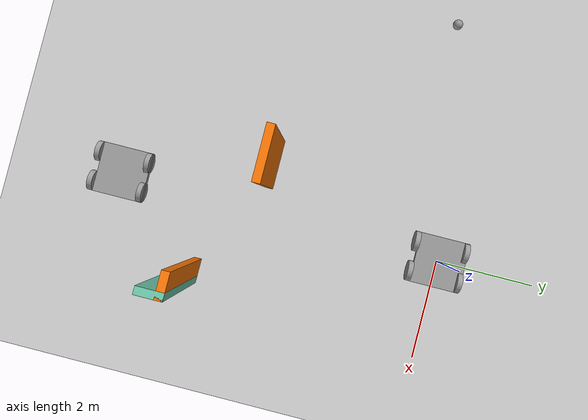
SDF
<sdf version="1.6">
 <world name="default">
  <model name="ground_plane">
   <static>1</static>
   <link name="link">
    <collision name="collision">
     <geometry><plane><normal>0 0 1</normal><size>100 100</size></plane></geometry>
     <surface><friction><ode><mu>100</mu><mu2>50</mu2></ode></friction></surface>
    </collision>
    <visual name="visual">
     <cast_shadows>0</cast_shadows>
     <geometry><plane><normal>0 0 1</normal><size>100 100</size></plane></geometry>
     <material>
      <script><uri>file://media/materials/scripts/gazebo.material</uri><name>Gazebo/Grey</name></script>
     </material>
    </visual>
   </link>
  </model>
  <model name="4WheelRobot">
   <link name="link_0">
    <pose>0 0.040015 0 0 -0 0</pose>
    <inertial>
     <mass>1</mass>
     <inertia>
      <ixx>0.166667</ixx>
      <ixy>0</ixy>
      <ixz>0</ixz>
      <iyy>0.166667</iyy>
      <iyz>0</iyz>
      <izz>0.166667</izz>
     </inertia>
    </inertial>
    <visual name="visual">
     <geometry><box><size>1 1 0.1</size></box></geometry>
     <material>
      <lighting>1</lighting>
      <script><uri>file://media/materials/scripts/gazebo.material</uri><name>Gazebo/Grey</name></script>
      <shader type="pixel"><normal_map>__default__</normal_map></shader>
      <ambient>0.3 0.3 0.3 1</ambient>
      <diffuse>0.7 0.7 0.7 1</diffuse>
      <specular>0.01 0.01 0.01 1</specular>
      <emissive>0 0 0 1</emissive>
     </material>
    </visual>
    <collision name="collision">
     <geometry><box><size>1 1 0.1</size></box></geometry>
     <surface>
      <friction>
       <ode><mu>1</mu><mu2>1</mu2><fdir1>0 0 0</fdir1><slip1>0</slip1><slip2>0</slip2></ode>
       <torsional>
        <coefficient>1</coefficient>
        <patch_radius>0</patch_radius>
        <surface_radius>0</surface_radius>
        <use_patch_radius>1</use_patch_radius>
        <ode><slip>0</slip></ode>
       </torsional>
      </friction>
      <bounce><restitution_coefficient>0</restitution_coefficient><threshold>1e+06</threshold></bounce>
      <contact>
       <collide_without_contact>0</collide_without_contact>
       <collide_without_contact_bitmask>1</collide_without_contact_bitmask>
       <collide_bitmask>1</collide_bitmask>
       <ode>
        <soft_cfm>0</soft_cfm>
        <soft_erp>0.2</soft_erp>
        <kp>1e+13</kp>
        <kd>1</kd>
        <max_vel>0.01</max_vel>
        <min_depth>0</min_depth>
       </ode>
       <bullet>
        <split_impulse>1</split_impulse>
        <split_impulse_penetration_threshold>-0.01</split_impulse_penetration_threshold>
        <soft_cfm>0</soft_cfm>
        <soft_erp>0.2</soft_erp>
        <kp>1e+13</kp>
        <kd>1</kd>
       </bullet>
      </contact>
     </surface>
    </collision>
   </link>
   <link name="link_1">
    <pose>-0.3 -0.510004 0 1.5707 -0 0</pose>
    <inertial>
     <mass>1</mass>
     <inertia><ixx>0.145833</ixx><ixy>0</ixy><ixz>0</ixz><iyy>0.145833</iyy><iyz>0</iyz><izz>0.125</izz></inertia>
    </inertial>
    <visual name="visual">
     <geometry><cylinder><radius>0.2</radius><length>0.1</length></cylinder></geometry>
     <material>
      <lighting>1</lighting>
      <script><uri>file://media/materials/scripts/gazebo.material</uri><name>Gazebo/Grey</name></script>
      <shader type="pixel"><normal_map>__default__</normal_map></shader>
      <ambient>0.3 0.3 0.3 1</ambient>
      <diffuse>0.7 0.7 0.7 1</diffuse>
      <specular>0.01 0.01 0.01 1</specular>
      <emissive>0 0 0 1</emissive>
     </material>
    </visual>
    <collision name="collision">
     <geometry><cylinder><radius>0.2</radius><length>0.1</length></cylinder></geometry>
     <surface>
      <friction>
       <ode><mu>1</mu><mu2>1</mu2><fdir1>0 0 0</fdir1><slip1>0</slip1><slip2>0</slip2></ode>
       <torsional>
        <coefficient>1</coefficient>
        <patch_radius>0</patch_radius>
        <surface_radius>0</surface_radius>
        <use_patch_radius>1</use_patch_radius>
        <ode><slip>0</slip></ode>
       </torsional>
      </friction>
      <bounce><restitution_coefficient>0</restitution_coefficient><threshold>1e+06</threshold></bounce>
      <contact>
       <collide_without_contact>0</collide_without_contact>
       <collide_without_contact_bitmask>1</collide_without_contact_bitmask>
       <collide_bitmask>1</collide_bitmask>
       <ode>
        <soft_cfm>0</soft_cfm>
        <soft_erp>0.2</soft_erp>
        <kp>1e+13</kp>
        <kd>1</kd>
        <max_vel>0.01</max_vel>
        <min_depth>0</min_depth>
       </ode>
       <bullet>
        <split_impulse>1</split_impulse>
        <split_impulse_penetration_threshold>-0.01</split_impulse_penetration_threshold>
        <soft_cfm>0</soft_cfm>
        <soft_erp>0.2</soft_erp>
        <kp>1e+13</kp>
        <kd>1</kd>
       </bullet>
      </contact>
     </surface>
    </collision>
   </link>
   <link name="link_1_clone">
    <pose>-0.3 0.489996 0 1.5707 -0 0</pose>
    <inertial>
     <mass>1</mass>
     <inertia><ixx>0.145833</ixx><ixy>0</ixy><ixz>0</ixz><iyy>0.145833</iyy><iyz>0</iyz><izz>0.125</izz></inertia>
    </inertial>
    <visual name="visual">
     <geometry><cylinder><radius>0.2</radius><length>0.1</length></cylinder></geometry>
     <material>
      <lighting>1</lighting>
      <script><uri>file://media/materials/scripts/gazebo.material</uri><name>Gazebo/Grey</name></script>
      <shader type="pixel"><normal_map>__default__</normal_map></shader>
      <ambient>0.3 0.3 0.3 1</ambient>
      <diffuse>0.7 0.7 0.7 1</diffuse>
      <specular>0.01 0.01 0.01 1</specular>
      <emissive>0 0 0 1</emissive>
     </material>
    </visual>
    <collision name="collision">
     <geometry><cylinder><radius>0.2</radius><length>0.1</length></cylinder></geometry>
     <surface>
      <friction>
       <ode><mu>1</mu><mu2>1</mu2><fdir1>0 0 0</fdir1><slip1>0</slip1><slip2>0</slip2></ode>
       <torsional>
        <coefficient>1</coefficient>
        <patch_radius>0</patch_radius>
        <surface_radius>0</surface_radius>
        <use_patch_radius>1</use_patch_radius>
        <ode><slip>0</slip></ode>
       </torsional>
      </friction>
      <bounce><restitution_coefficient>0</restitution_coefficient><threshold>1e+06</threshold></bounce>
      <contact>
       <collide_without_contact>0</collide_without_contact>
       <collide_without_contact_bitmask>1</collide_without_contact_bitmask>
       <collide_bitmask>1</collide_bitmask>
       <ode>
        <soft_cfm>0</soft_cfm>
        <soft_erp>0.2</soft_erp>
        <kp>1e+13</kp>
        <kd>1</kd>
        <max_vel>0.01</max_vel>
        <min_depth>0</min_depth>
       </ode>
       <bullet>
        <split_impulse>1</split_impulse>
        <split_impulse_penetration_threshold>-0.01</split_impulse_penetration_threshold>
        <soft_cfm>0</soft_cfm>
        <soft_erp>0.2</soft_erp>
        <kp>1e+13</kp>
        <kd>1</kd>
       </bullet>
      </contact>
     </surface>
    </collision>
   </link>
   <link name="link_1_clone_0">
    <pose>0.3 -0.510004 0 1.5707 -0 0</pose>
    <inertial>
     <mass>1</mass>
     <inertia><ixx>0.145833</ixx><ixy>0</ixy><ixz>0</ixz><iyy>0.145833</iyy><iyz>0</iyz><izz>0.125</izz></inertia>
    </inertial>
    <visual name="visual">
     <geometry><cylinder><radius>0.2</radius><length>0.1</length></cylinder></geometry>
     <material>
      <lighting>1</lighting>
      <script><uri>file://media/materials/scripts/gazebo.material</uri><name>Gazebo/Grey</name></script>
      <shader type="pixel"><normal_map>__default__</normal_map></shader>
      <ambient>0.3 0.3 0.3 1</ambient>
      <diffuse>0.7 0.7 0.7 1</diffuse>
      <specular>0.01 0.01 0.01 1</specular>
      <emissive>0 0 0 1</emissive>
     </material>
    </visual>
    <collision name="collision">
     <geometry><cylinder><radius>0.2</radius><length>0.1</length></cylinder></geometry>
     <surface>
      <friction>
       <ode><mu>1</mu><mu2>1</mu2><fdir1>0 0 0</fdir1><slip1>0</slip1><slip2>0</slip2></ode>
       <torsional>
        <coefficient>1</coefficient>
        <patch_radius>0</patch_radius>
        <surface_radius>0</surface_radius>
        <use_patch_radius>1</use_patch_radius>
        <ode><slip>0</slip></ode>
       </torsional>
      </friction>
      <bounce><restitution_coefficient>0</restitution_coefficient><threshold>1e+06</threshold></bounce>
      <contact>
       <collide_without_contact>0</collide_without_contact>
       <collide_without_contact_bitmask>1</collide_without_contact_bitmask>
       <collide_bitmask>1</collide_bitmask>
       <ode>
        <soft_cfm>0</soft_cfm>
        <soft_erp>0.2</soft_erp>
        <kp>1e+13</kp>
        <kd>1</kd>
        <max_vel>0.01</max_vel>
        <min_depth>0</min_depth>
       </ode>
       <bullet>
        <split_impulse>1</split_impulse>
        <split_impulse_penetration_threshold>-0.01</split_impulse_penetration_threshold>
        <soft_cfm>0</soft_cfm>
        <soft_erp>0.2</soft_erp>
        <kp>1e+13</kp>
        <kd>1</kd>
       </bullet>
      </contact>
     </surface>
    </collision>
   </link>
   <link name="link_1_clone_1">
    <pose>0.3 0.489996 0 1.5707 -0 0</pose>
    <inertial>
     <mass>1</mass>
     <inertia><ixx>0.145833</ixx><ixy>0</ixy><ixz>0</ixz><iyy>0.145833</iyy><iyz>0</iyz><izz>0.125</izz></inertia>
    </inertial>
    <visual name="visual">
     <geometry><cylinder><radius>0.2</radius><length>0.1</length></cylinder></geometry>
     <material>
      <lighting>1</lighting>
      <script><uri>file://media/materials/scripts/gazebo.material</uri><name>Gazebo/Grey</name></script>
      <shader type="pixel"><normal_map>__default__</normal_map></shader>
      <ambient>0.3 0.3 0.3 1</ambient>
      <diffuse>0.7 0.7 0.7 1</diffuse>
      <specular>0.01 0.01 0.01 1</specular>
      <emissive>0 0 0 1</emissive>
     </material>
    </visual>
    <collision name="collision">
     <geometry><cylinder><radius>0.2</radius><length>0.1</length></cylinder></geometry>
     <surface>
      <friction>
       <ode><mu>1</mu><mu2>1</mu2><fdir1>0 0 0</fdir1><slip1>0</slip1><slip2>0</slip2></ode>
       <torsional>
        <coefficient>1</coefficient>
        <patch_radius>0</patch_radius>
        <surface_radius>0</surface_radius>
        <use_patch_radius>1</use_patch_radius>
        <ode><slip>0</slip></ode>
       </torsional>
      </friction>
      <bounce><restitution_coefficient>0</restitution_coefficient><threshold>1e+06</threshold></bounce>
      <contact>
       <collide_without_contact>0</collide_without_contact>
       <collide_without_contact_bitmask>1</collide_without_contact_bitmask>
       <collide_bitmask>1</collide_bitmask>
       <ode>
        <soft_cfm>0</soft_cfm>
        <soft_erp>0.2</soft_erp>
        <kp>1e+13</kp>
        <kd>1</kd>
        <max_vel>0.01</max_vel>
        <min_depth>0</min_depth>
       </ode>
       <bullet>
        <split_impulse>1</split_impulse>
        <split_impulse_penetration_threshold>-0.01</split_impulse_penetration_threshold>
        <soft_cfm>0</soft_cfm>
        <soft_erp>0.2</soft_erp>
        <kp>1e+13</kp>
        <kd>1</kd>
       </bullet>
      </contact>
     </surface>
    </collision>
   </link>
   <joint name="link_0_JOINT_0" type="revolute">
    <parent>link_0</parent>
    <child>link_1</child>
    <axis>
     <xyz>1 0 0</xyz>
     <use_parent_model_frame>0</use_parent_model_frame>
     <limit>
      <lower>-1.79769e+308</lower>
      <upper>1.79769e+308</upper>
      <effort>-1</effort>
      <velocity>-1</velocity>
     </limit>
     <dynamics>
      <spring_reference>0</spring_reference>
      <spring_stiffness>0</spring_stiffness>
      <damping>0</damping>
     </dynamics>
    </axis>
    <physics>
     <ode><limit><cfm>0</cfm><erp>0.2</erp></limit><suspension><cfm>0</cfm><erp>0.2</erp></suspension></ode>
    </physics>
   </joint>
   <joint name="link_0_JOINT_1" type="revolute">
    <parent>link_0</parent>
    <child>link_1_clone</child>
    <axis>
     <xyz>1 0 0</xyz>
     <use_parent_model_frame>0</use_parent_model_frame>
     <limit>
      <lower>-1.79769e+308</lower>
      <upper>1.79769e+308</upper>
      <effort>-1</effort>
      <velocity>-1</velocity>
     </limit>
     <dynamics>
      <spring_reference>0</spring_reference>
      <spring_stiffness>0</spring_stiffness>
      <damping>0</damping>
     </dynamics>
    </axis>
    <physics>
     <ode><limit><cfm>0</cfm><erp>0.2</erp></limit><suspension><cfm>0</cfm><erp>0.2</erp></suspension></ode>
    </physics>
   </joint>
   <joint name="link_0_JOINT_2" type="revolute">
    <parent>link_0</parent>
    <child>link_1_clone_0</child>
    <axis>
     <xyz>1 0 0</xyz>
     <use_parent_model_frame>0</use_parent_model_frame>
     <limit>
      <lower>-1.79769e+308</lower>
      <upper>1.79769e+308</upper>
      <effort>-1</effort>
      <velocity>-1</velocity>
     </limit>
     <dynamics>
      <spring_reference>0</spring_reference>
      <spring_stiffness>0</spring_stiffness>
      <damping>0</damping>
     </dynamics>
    </axis>
    <physics>
     <ode><limit><cfm>0</cfm><erp>0.2</erp></limit><suspension><cfm>0</cfm><erp>0.2</erp></suspension></ode>
    </physics>
   </joint>
   <joint name="link_0_JOINT_3" type="revolute">
    <parent>link_0</parent>
    <child>link_1_clone_1</child>
    <axis>
     <xyz>1 0 0</xyz>
     <use_parent_model_frame>0</use_parent_model_frame>
     <limit>
      <lower>-1.79769e+308</lower>
      <upper>1.79769e+308</upper>
      <effort>-1</effort>
      <velocity>-1</velocity>
     </limit>
     <dynamics>
      <spring_reference>0</spring_reference>
      <spring_stiffness>0</spring_stiffness>
      <damping>0</damping>
     </dynamics>
    </axis>
    <physics>
     <ode><limit><cfm>0</cfm><erp>0.2</erp></limit><suspension><cfm>0</cfm><erp>0.2</erp></suspension></ode>
    </physics>
   </joint>
   <static>0</static>
   <pose>0.00325 -0.018152 0.199995 1e-05 -0 0.002145</pose>
  </model>
  <model name="orange_wall">
   <link name="Wall_0">
    <pose>0 0 0 0 -0 3.14159</pose>
    <visual name="Wall_0_Visual">
     <pose>0 0 1.25 0 -0 0</pose>
     <geometry><box><size>1 0.15 2.5</size></box></geometry>
     <material>
      <script><uri>file://media/materials/scripts/gazebo.material</uri><name>Gazebo/Grey</name></script>
      <ambient>0.996078 0.47451 0.0196078 1</ambient>
      <shader type="pixel"/>
      <diffuse>0.7 0.7 0.7 1</diffuse>
      <specular>0.01 0.01 0.01 1</specular>
      <emissive>0 0 0 1</emissive>
     </material>
     <meta><layer>0</layer></meta>
    </visual>
    <collision name="Wall_0_Collision">
     <pose>0 0 1.25 0 -0 0</pose>
     <geometry><box><size>1 0.15 2.5</size></box></geometry>
     <surface>
      <friction>
       <ode><mu>1</mu><mu2>1</mu2><fdir1>0 0 0</fdir1><slip1>0</slip1><slip2>0</slip2></ode>
       <torsional>
        <coefficient>1</coefficient>
        <patch_radius>0</patch_radius>
        <surface_radius>0</surface_radius>
        <use_patch_radius>1</use_patch_radius>
        <ode><slip>0</slip></ode>
       </torsional>
      </friction>
      <bounce><restitution_coefficient>0</restitution_coefficient><threshold>1e+06</threshold></bounce>
      <contact>
       <collide_without_contact>0</collide_without_contact>
       <collide_without_contact_bitmask>1</collide_without_contact_bitmask>
       <collide_bitmask>1</collide_bitmask>
       <ode>
        <soft_cfm>0</soft_cfm>
        <soft_erp>0.2</soft_erp>
        <kp>1e+13</kp>
        <kd>1</kd>
        <max_vel>0.01</max_vel>
        <min_depth>0</min_depth>
       </ode>
       <bullet>
        <split_impulse>1</split_impulse>
        <split_impulse_penetration_threshold>-0.01</split_impulse_penetration_threshold>
        <soft_cfm>0</soft_cfm>
        <soft_erp>0.2</soft_erp>
        <kp>1e+13</kp>
        <kd>1</kd>
       </bullet>
      </contact>
     </surface>
    </collision>
   </link>
   <static>1</static>
   <pose>-1.085 -3.65 0 0 -0 0</pose>
  </model>
  <model name="teal-wall">
   <pose>1.395 -4.865 0 0 -0 0</pose>
   <link name="Wall_0">
    <collision name="Wall_0_Collision">
     <geometry><box><size>0.5 0.15 2.5</size></box></geometry>
     <pose>0 0 1.25 0 -0 0</pose>
    </collision>
    <visual name="Wall_0_Visual">
     <pose>0 0 1.25 0 -0 0</pose>
     <geometry><box><size>0.5 0.15 2.5</size></box></geometry>
     <material>
      <script><uri>file://media/materials/scripts/gazebo.material</uri><name>Gazebo/Grey</name></script>
      <ambient>0.996078 0.47451 0.0196078 1</ambient>
     </material>
     <meta><layer>0</layer></meta>
    </visual>
    <pose>0 0.175 0 0 -0 3.14159</pose>
   </link>
   <link name="Wall_2">
    <collision name="Wall_2_Collision">
     <geometry><box><size>0.5 0.15 2.5</size></box></geometry>
     <pose>0 0 1.25 0 -0 0</pose>
    </collision>
    <visual name="Wall_2_Visual">
     <pose>0 0 1.25 0 -0 0</pose>
     <geometry><box><size>0.5 0.15 2.5</size></box></geometry>
     <material>
      <script><uri>file://media/materials/scripts/gazebo.material</uri><name>Gazebo/Grey</name></script>
      <ambient>0.435294 0.796078 0.67451 1</ambient>
     </material>
     <meta><layer>0</layer></meta>
    </visual>
    <pose>0.175 0 0 0 0 -1.5708</pose>
   </link>
   <static>1</static>
  </model>
  <model name="4WheelRobot_clone">
   <link name="link_0">
    <pose>0 0.040015 0 0 -0 0</pose>
    <inertial>
     <mass>1</mass>
     <inertia>
      <ixx>0.166667</ixx>
      <ixy>0</ixy>
      <ixz>0</ixz>
      <iyy>0.166667</iyy>
      <iyz>0</iyz>
      <izz>0.166667</izz>
     </inertia>
    </inertial>
    <visual name="visual">
     <geometry><box><size>1 1 0.1</size></box></geometry>
     <material>
      <lighting>1</lighting>
      <script><uri>file://media/materials/scripts/gazebo.material</uri><name>Gazebo/Grey</name></script>
      <shader type="pixel"><normal_map>__default__</normal_map></shader>
      <ambient>0.3 0.3 0.3 1</ambient>
      <diffuse>0.7 0.7 0.7 1</diffuse>
      <specular>0.01 0.01 0.01 1</specular>
      <emissive>0 0 0 1</emissive>
     </material>
    </visual>
    <collision name="collision">
     <geometry><box><size>1 1 0.1</size></box></geometry>
     <surface>
      <friction>
       <ode><mu>1</mu><mu2>1</mu2><fdir1>0 0 0</fdir1><slip1>0</slip1><slip2>0</slip2></ode>
       <torsional>
        <coefficient>1</coefficient>
        <patch_radius>0</patch_radius>
        <surface_radius>0</surface_radius>
        <use_patch_radius>1</use_patch_radius>
        <ode><slip>0</slip></ode>
       </torsional>
      </friction>
      <bounce><restitution_coefficient>0</restitution_coefficient><threshold>1e+06</threshold></bounce>
      <contact>
       <collide_without_contact>0</collide_without_contact>
       <collide_without_contact_bitmask>1</collide_without_contact_bitmask>
       <collide_bitmask>1</collide_bitmask>
       <ode>
        <soft_cfm>0</soft_cfm>
        <soft_erp>0.2</soft_erp>
        <kp>1e+13</kp>
        <kd>1</kd>
        <max_vel>0.01</max_vel>
        <min_depth>0</min_depth>
       </ode>
       <bullet>
        <split_impulse>1</split_impulse>
        <split_impulse_penetration_threshold>-0.01</split_impulse_penetration_threshold>
        <soft_cfm>0</soft_cfm>
        <soft_erp>0.2</soft_erp>
        <kp>1e+13</kp>
        <kd>1</kd>
       </bullet>
      </contact>
     </surface>
    </collision>
   </link>
   <link name="link_1">
    <pose>-0.3 -0.510004 0 1.5707 -0 0</pose>
    <inertial>
     <mass>1</mass>
     <inertia><ixx>0.145833</ixx><ixy>0</ixy><ixz>0</ixz><iyy>0.145833</iyy><iyz>0</iyz><izz>0.125</izz></inertia>
    </inertial>
    <visual name="visual">
     <geometry><cylinder><radius>0.2</radius><length>0.1</length></cylinder></geometry>
     <material>
      <lighting>1</lighting>
      <script><uri>file://media/materials/scripts/gazebo.material</uri><name>Gazebo/Grey</name></script>
      <shader type="pixel"><normal_map>__default__</normal_map></shader>
      <ambient>0.3 0.3 0.3 1</ambient>
      <diffuse>0.7 0.7 0.7 1</diffuse>
      <specular>0.01 0.01 0.01 1</specular>
      <emissive>0 0 0 1</emissive>
     </material>
    </visual>
    <collision name="collision">
     <geometry><cylinder><radius>0.2</radius><length>0.1</length></cylinder></geometry>
     <surface>
      <friction>
       <ode><mu>1</mu><mu2>1</mu2><fdir1>0 0 0</fdir1><slip1>0</slip1><slip2>0</slip2></ode>
       <torsional>
        <coefficient>1</coefficient>
        <patch_radius>0</patch_radius>
        <surface_radius>0</surface_radius>
        <use_patch_radius>1</use_patch_radius>
        <ode><slip>0</slip></ode>
       </torsional>
      </friction>
      <bounce><restitution_coefficient>0</restitution_coefficient><threshold>1e+06</threshold></bounce>
      <contact>
       <collide_without_contact>0</collide_without_contact>
       <collide_without_contact_bitmask>1</collide_without_contact_bitmask>
       <collide_bitmask>1</collide_bitmask>
       <ode>
        <soft_cfm>0</soft_cfm>
        <soft_erp>0.2</soft_erp>
        <kp>1e+13</kp>
        <kd>1</kd>
        <max_vel>0.01</max_vel>
        <min_depth>0</min_depth>
       </ode>
       <bullet>
        <split_impulse>1</split_impulse>
        <split_impulse_penetration_threshold>-0.01</split_impulse_penetration_threshold>
        <soft_cfm>0</soft_cfm>
        <soft_erp>0.2</soft_erp>
        <kp>1e+13</kp>
        <kd>1</kd>
       </bullet>
      </contact>
     </surface>
    </collision>
   </link>
   <link name="link_1_clone">
    <pose>-0.3 0.489996 0 1.5707 -0 0</pose>
    <inertial>
     <mass>1</mass>
     <inertia><ixx>0.145833</ixx><ixy>0</ixy><ixz>0</ixz><iyy>0.145833</iyy><iyz>0</iyz><izz>0.125</izz></inertia>
    </inertial>
    <visual name="visual">
     <geometry><cylinder><radius>0.2</radius><length>0.1</length></cylinder></geometry>
     <material>
      <lighting>1</lighting>
      <script><uri>file://media/materials/scripts/gazebo.material</uri><name>Gazebo/Grey</name></script>
      <shader type="pixel"><normal_map>__default__</normal_map></shader>
      <ambient>0.3 0.3 0.3 1</ambient>
      <diffuse>0.7 0.7 0.7 1</diffuse>
      <specular>0.01 0.01 0.01 1</specular>
      <emissive>0 0 0 1</emissive>
     </material>
    </visual>
    <collision name="collision">
     <geometry><cylinder><radius>0.2</radius><length>0.1</length></cylinder></geometry>
     <surface>
      <friction>
       <ode><mu>1</mu><mu2>1</mu2><fdir1>0 0 0</fdir1><slip1>0</slip1><slip2>0</slip2></ode>
       <torsional>
        <coefficient>1</coefficient>
        <patch_radius>0</patch_radius>
        <surface_radius>0</surface_radius>
        <use_patch_radius>1</use_patch_radius>
        <ode><slip>0</slip></ode>
       </torsional>
      </friction>
      <bounce><restitution_coefficient>0</restitution_coefficient><threshold>1e+06</threshold></bounce>
      <contact>
       <collide_without_contact>0</collide_without_contact>
       <collide_without_contact_bitmask>1</collide_without_contact_bitmask>
       <collide_bitmask>1</collide_bitmask>
       <ode>
        <soft_cfm>0</soft_cfm>
        <soft_erp>0.2</soft_erp>
        <kp>1e+13</kp>
        <kd>1</kd>
        <max_vel>0.01</max_vel>
        <min_depth>0</min_depth>
       </ode>
       <bullet>
        <split_impulse>1</split_impulse>
        <split_impulse_penetration_threshold>-0.01</split_impulse_penetration_threshold>
        <soft_cfm>0</soft_cfm>
        <soft_erp>0.2</soft_erp>
        <kp>1e+13</kp>
        <kd>1</kd>
       </bullet>
      </contact>
     </surface>
    </collision>
   </link>
   <link name="link_1_clone_0">
    <pose>0.3 -0.510004 0 1.5707 -0 0</pose>
    <inertial>
     <mass>1</mass>
     <inertia><ixx>0.145833</ixx><ixy>0</ixy><ixz>0</ixz><iyy>0.145833</iyy><iyz>0</iyz><izz>0.125</izz></inertia>
    </inertial>
    <visual name="visual">
     <geometry><cylinder><radius>0.2</radius><length>0.1</length></cylinder></geometry>
     <material>
      <lighting>1</lighting>
      <script><uri>file://media/materials/scripts/gazebo.material</uri><name>Gazebo/Grey</name></script>
      <shader type="pixel"><normal_map>__default__</normal_map></shader>
      <ambient>0.3 0.3 0.3 1</ambient>
      <diffuse>0.7 0.7 0.7 1</diffuse>
      <specular>0.01 0.01 0.01 1</specular>
      <emissive>0 0 0 1</emissive>
     </material>
    </visual>
    <collision name="collision">
     <geometry><cylinder><radius>0.2</radius><length>0.1</length></cylinder></geometry>
     <surface>
      <friction>
       <ode><mu>1</mu><mu2>1</mu2><fdir1>0 0 0</fdir1><slip1>0</slip1><slip2>0</slip2></ode>
       <torsional>
        <coefficient>1</coefficient>
        <patch_radius>0</patch_radius>
        <surface_radius>0</surface_radius>
        <use_patch_radius>1</use_patch_radius>
        <ode><slip>0</slip></ode>
       </torsional>
      </friction>
      <bounce><restitution_coefficient>0</restitution_coefficient><threshold>1e+06</threshold></bounce>
      <contact>
       <collide_without_contact>0</collide_without_contact>
       <collide_without_contact_bitmask>1</collide_without_contact_bitmask>
       <collide_bitmask>1</collide_bitmask>
       <ode>
        <soft_cfm>0</soft_cfm>
        <soft_erp>0.2</soft_erp>
        <kp>1e+13</kp>
        <kd>1</kd>
        <max_vel>0.01</max_vel>
        <min_depth>0</min_depth>
       </ode>
       <bullet>
        <split_impulse>1</split_impulse>
        <split_impulse_penetration_threshold>-0.01</split_impulse_penetration_threshold>
        <soft_cfm>0</soft_cfm>
        <soft_erp>0.2</soft_erp>
        <kp>1e+13</kp>
        <kd>1</kd>
       </bullet>
      </contact>
     </surface>
    </collision>
   </link>
   <link name="link_1_clone_1">
    <pose>0.3 0.489996 0 1.5707 -0 0</pose>
    <inertial>
     <mass>1</mass>
     <inertia><ixx>0.145833</ixx><ixy>0</ixy><ixz>0</ixz><iyy>0.145833</iyy><iyz>0</iyz><izz>0.125</izz></inertia>
    </inertial>
    <visual name="visual">
     <geometry><cylinder><radius>0.2</radius><length>0.1</length></cylinder></geometry>
     <material>
      <lighting>1</lighting>
      <script><uri>file://media/materials/scripts/gazebo.material</uri><name>Gazebo/Grey</name></script>
      <shader type="pixel"><normal_map>__default__</normal_map></shader>
      <ambient>0.3 0.3 0.3 1</ambient>
      <diffuse>0.7 0.7 0.7 1</diffuse>
      <specular>0.01 0.01 0.01 1</specular>
      <emissive>0 0 0 1</emissive>
     </material>
    </visual>
    <collision name="collision">
     <geometry><cylinder><radius>0.2</radius><length>0.1</length></cylinder></geometry>
     <surface>
      <friction>
       <ode><mu>1</mu><mu2>1</mu2><fdir1>0 0 0</fdir1><slip1>0</slip1><slip2>0</slip2></ode>
       <torsional>
        <coefficient>1</coefficient>
        <patch_radius>0</patch_radius>
        <surface_radius>0</surface_radius>
        <use_patch_radius>1</use_patch_radius>
        <ode><slip>0</slip></ode>
       </torsional>
      </friction>
      <bounce><restitution_coefficient>0</restitution_coefficient><threshold>1e+06</threshold></bounce>
      <contact>
       <collide_without_contact>0</collide_without_contact>
       <collide_without_contact_bitmask>1</collide_without_contact_bitmask>
       <collide_bitmask>1</collide_bitmask>
       <ode>
        <soft_cfm>0</soft_cfm>
        <soft_erp>0.2</soft_erp>
        <kp>1e+13</kp>
        <kd>1</kd>
        <max_vel>0.01</max_vel>
        <min_depth>0</min_depth>
       </ode>
       <bullet>
        <split_impulse>1</split_impulse>
        <split_impulse_penetration_threshold>-0.01</split_impulse_penetration_threshold>
        <soft_cfm>0</soft_cfm>
        <soft_erp>0.2</soft_erp>
        <kp>1e+13</kp>
        <kd>1</kd>
       </bullet>
      </contact>
     </surface>
    </collision>
   </link>
   <joint name="link_0_JOINT_0" type="revolute">
    <parent>link_0</parent>
    <child>link_1</child>
    <axis>
     <xyz>1 0 0</xyz>
     <use_parent_model_frame>0</use_parent_model_frame>
     <limit>
      <lower>-1.79769e+308</lower>
      <upper>1.79769e+308</upper>
      <effort>-1</effort>
      <velocity>-1</velocity>
     </limit>
     <dynamics>
      <spring_reference>0</spring_reference>
      <spring_stiffness>0</spring_stiffness>
      <damping>0</damping>
     </dynamics>
    </axis>
    <physics>
     <ode><limit><cfm>0</cfm><erp>0.2</erp></limit><suspension><cfm>0</cfm><erp>0.2</erp></suspension></ode>
    </physics>
   </joint>
   <joint name="link_0_JOINT_1" type="revolute">
    <parent>link_0</parent>
    <child>link_1_clone</child>
    <axis>
     <xyz>1 0 0</xyz>
     <use_parent_model_frame>0</use_parent_model_frame>
     <limit>
      <lower>-1.79769e+308</lower>
      <upper>1.79769e+308</upper>
      <effort>-1</effort>
      <velocity>-1</velocity>
     </limit>
     <dynamics>
      <spring_reference>0</spring_reference>
      <spring_stiffness>0</spring_stiffness>
      <damping>0</damping>
     </dynamics>
    </axis>
    <physics>
     <ode><limit><cfm>0</cfm><erp>0.2</erp></limit><suspension><cfm>0</cfm><erp>0.2</erp></suspension></ode>
    </physics>
   </joint>
   <joint name="link_0_JOINT_2" type="revolute">
    <parent>link_0</parent>
    <child>link_1_clone_0</child>
    <axis>
     <xyz>1 0 0</xyz>
     <use_parent_model_frame>0</use_parent_model_frame>
     <limit>
      <lower>-1.79769e+308</lower>
      <upper>1.79769e+308</upper>
      <effort>-1</effort>
      <velocity>-1</velocity>
     </limit>
     <dynamics>
      <spring_reference>0</spring_reference>
      <spring_stiffness>0</spring_stiffness>
      <damping>0</damping>
     </dynamics>
    </axis>
    <physics>
     <ode><limit><cfm>0</cfm><erp>0.2</erp></limit><suspension><cfm>0</cfm><erp>0.2</erp></suspension></ode>
    </physics>
   </joint>
   <joint name="link_0_JOINT_3" type="revolute">
    <parent>link_0</parent>
    <child>link_1_clone_1</child>
    <axis>
     <xyz>1 0 0</xyz>
     <use_parent_model_frame>0</use_parent_model_frame>
     <limit>
      <lower>-1.79769e+308</lower>
      <upper>1.79769e+308</upper>
      <effort>-1</effort>
      <velocity>-1</velocity>
     </limit>
     <dynamics>
      <spring_reference>0</spring_reference>
      <spring_stiffness>0</spring_stiffness>
      <damping>0</damping>
     </dynamics>
    </axis>
    <physics>
     <ode><limit><cfm>0</cfm><erp>0.2</erp></limit><suspension><cfm>0</cfm><erp>0.2</erp></suspension></ode>
    </physics>
   </joint>
   <static>0</static>
   <pose>-0.164874 -6.56867 0.2 0 -0 0.002222</pose>
  </model>
  <model name="my_ball">
   <link name="link_0">
    <inertial>
     <mass>1</mass>
     <inertia><ixx>0.1</ixx><ixy>0</ixy><ixz>0</ixz><iyy>0.1</iyy><iyz>0</iyz><izz>0.1</izz></inertia>
    </inertial>
    <visual name="visual">
     <geometry><sphere><radius>0.1</radius></sphere></geometry>
     <material>
      <lighting>1</lighting>
      <script><uri>file://media/materials/scripts/gazebo.material</uri><name>Gazebo/Grey</name></script>
      <shader type="pixel"><normal_map>__default__</normal_map></shader>
      <ambient>1 1 1 1</ambient>
      <diffuse>1 1 1 1</diffuse>
      <specular>1 1 1 1</specular>
      <emissive>0 0 0 1</emissive>
     </material>
    </visual>
    <collision name="collision">
     <geometry><sphere><radius>0.1</radius></sphere></geometry>
     <surface>
      <friction>
       <ode><mu>1</mu><mu2>1</mu2><fdir1>0 0 0</fdir1><slip1>0</slip1><slip2>0</slip2></ode>
       <torsional>
        <coefficient>1</coefficient>
        <patch_radius>0</patch_radius>
        <surface_radius>0</surface_radius>
        <use_patch_radius>1</use_patch_radius>
        <ode><slip>0</slip></ode>
       </torsional>
      </friction>
      <bounce><restitution_coefficient>0</restitution_coefficient><threshold>1e+06</threshold></bounce>
      <contact>
       <collide_without_contact>0</collide_without_contact>
       <collide_without_contact_bitmask>1</collide_without_contact_bitmask>
       <collide_bitmask>1</collide_bitmask>
       <ode>
        <soft_cfm>0</soft_cfm>
        <soft_erp>0.2</soft_erp>
        <kp>1e+13</kp>
        <kd>1</kd>
        <max_vel>0.01</max_vel>
        <min_depth>0</min_depth>
       </ode>
       <bullet>
        <split_impulse>1</split_impulse>
        <split_impulse_penetration_threshold>-0.01</split_impulse_penetration_threshold>
        <soft_cfm>0</soft_cfm>
        <soft_erp>0.2</soft_erp>
        <kp>1e+13</kp>
        <kd>1</kd>
       </bullet>
      </contact>
     </surface>
    </collision>
   </link>
   <static>0</static>
   <pose>-4.74313 -0.774453 0.1 0 -0 0</pose>
  </model>
 </world>
</sdf>
